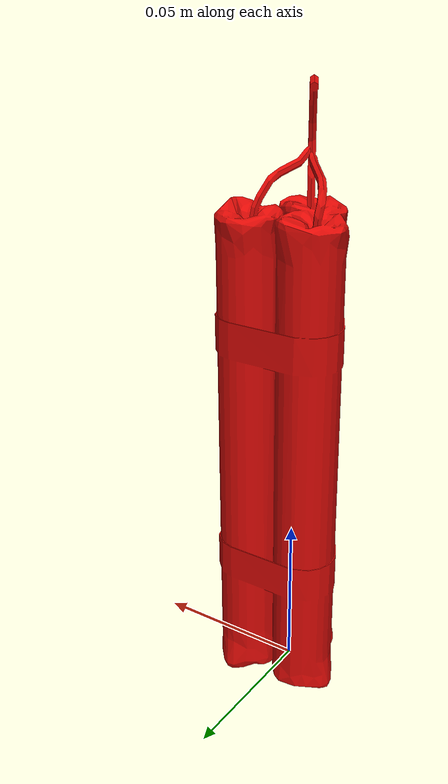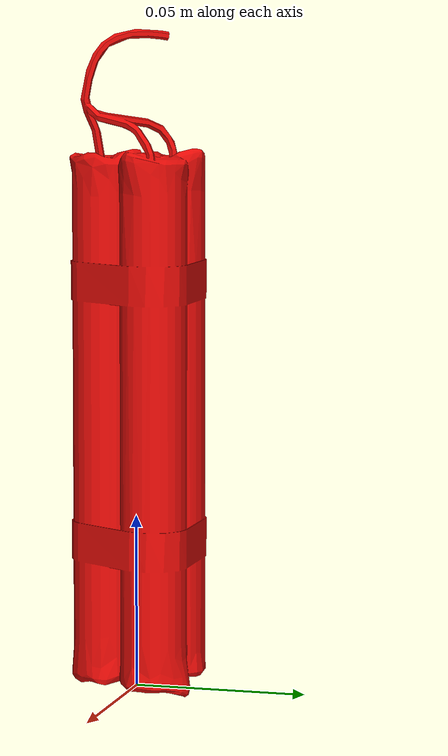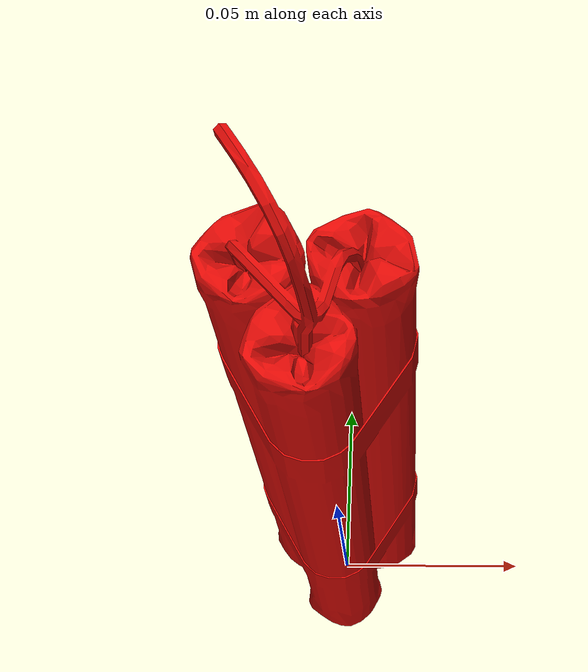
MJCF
<mujoco model="custom_obvious_mesh_turbosquid_dynamite_vertical">
  <asset>
    <mesh name="visual_mesh" file="../turbosquid_dynamite/turbosquid_dynamite.obj" />
  </asset>
  <worldbody>
    <body>
      <body name="object">
        <geom
          conaffinity="0"
          contype="0"
          group="1"
          mesh="visual_mesh"
          pos="0.0000 0.0190 0.0950"
          quat="0.7071068 0.7071068 0 0"
          rgba="0.88 0.04 0.025 1"
          type="mesh"
        />

        <geom
          density="100"
          friction="0.95 0.3 0.1"
          group="0"
          pos="0.0000 0.0000 0.0950"
          rgba="0.8 0.8 0.8 0.0"
          size="0.0350 0.0350 0.0950"
          type="box"
        />
        <geom
          name="reg_bbox"
          conaffinity="0"
          contype="0"
          group="3"
          pos="0.0000 0.0000 0.0950"
          rgba="0 0 0 0"
          size="0.0350 0.0350 0.0950"
          type="box"
        />
      </body>
      <site rgba="0 0 0 0" size="0.005" pos="0 0 0" name="bottom_site" />
      <site rgba="0 0 0 0" size="0.005" pos="0 0 0.1900" name="top_site" />
      <site rgba="0 0 0 0" size="0.005" pos="0.0400 0.0400 0" name="horizontal_radius_site" />
    </body>
  </worldbody>
</mujoco>
